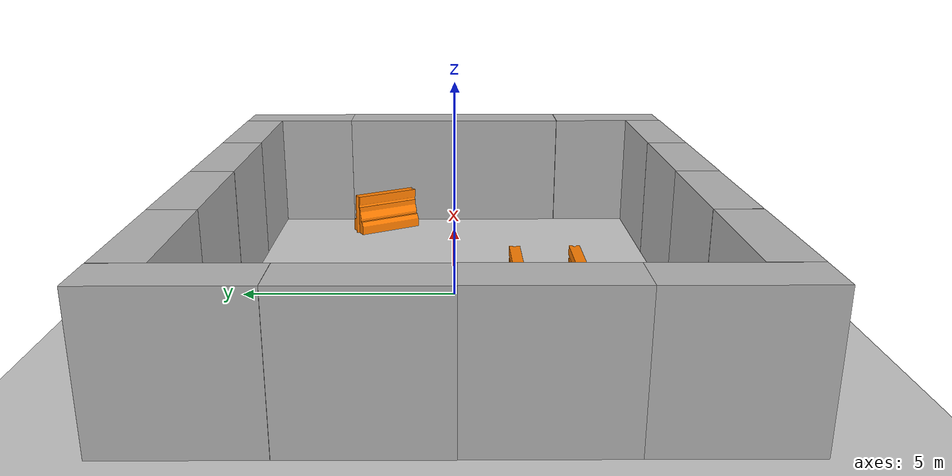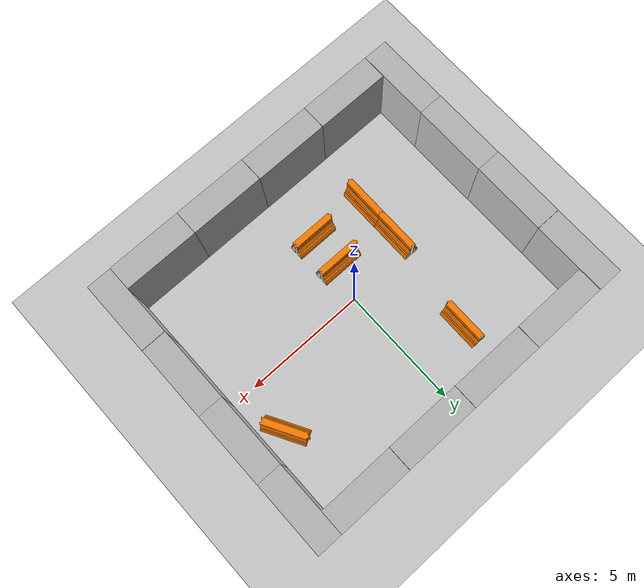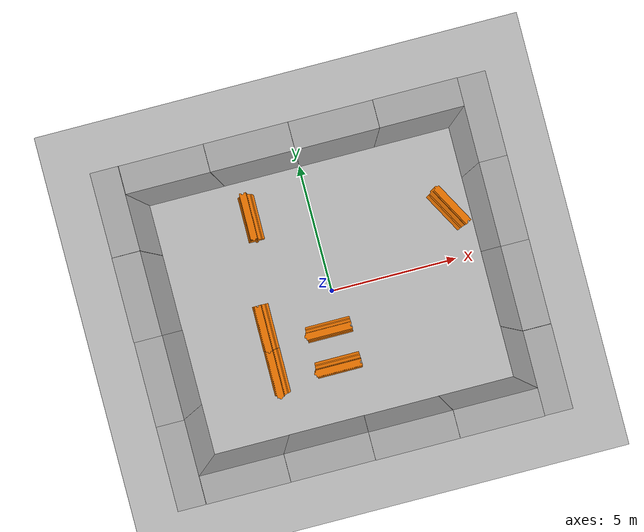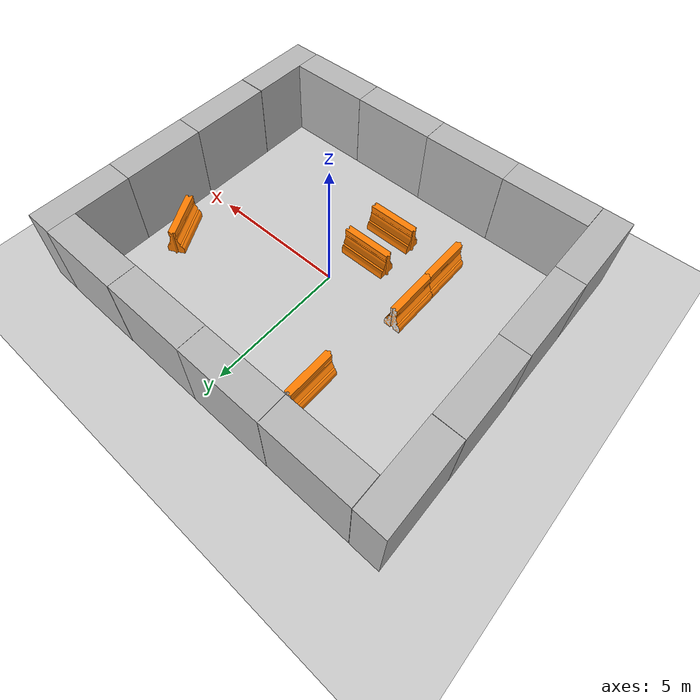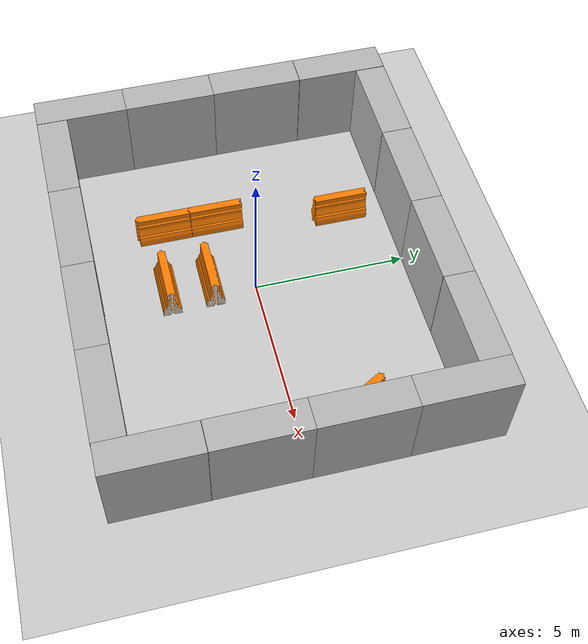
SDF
<sdf version="1.7">
 <world name="default">
  <light name="sun" type="directional">
   <cast_shadows>0</cast_shadows>
   <pose>0 0 10 0 -0 0</pose>
   <diffuse>0.8 0.8 0.8 1</diffuse>
   <specular>0.2 0.2 0.2 1</specular>
   <attenuation>
    <range>1000</range>
    <constant>0.9</constant>
    <linear>0.01</linear>
    <quadratic>0.001</quadratic>
   </attenuation>
   <direction>-0.5 0.1 -0.9</direction>
   <spot><inner_angle>0</inner_angle><outer_angle>0</outer_angle><falloff>0</falloff></spot>
  </light>
  <plugin name="ActorPosesPlugin" filename="libActorPosesPlugin.so"/>
  <model name="ground_plane">
   <static>1</static>
   <link name="link">
    <collision name="collision">
     <geometry><plane><normal>0 0 1</normal><size>100 100</size></plane></geometry>
     <surface><friction><ode><mu>100</mu><mu2>50</mu2></ode></friction></surface>
    </collision>
    <visual name="visual">
     <cast_shadows>0</cast_shadows>
     <geometry><plane><normal>0 0 1</normal><size>100 100</size></plane></geometry>
     <material>
      <script><uri>file://media/materials/scripts/gazebo.material</uri><name>Gazebo/Grey</name></script>
     </material>
    </visual>
   </link>
  </model>
  <gravity>0 0 -9.8</gravity>
  <magnetic_field>6e-06 2.3e-05 -4.2e-05</magnetic_field>
  <atmosphere type="adiabatic"/>
  <physics name="default_physics" default="0" type="ode">
   <max_step_size>0.001</max_step_size>
   <real_time_factor>1</real_time_factor>
   <real_time_update_rate>1000</real_time_update_rate>
  </physics>
  <scene><ambient>0.4 0.4 0.4 1</ambient><background>0.7 0.7 0.7 1</background><shadows>0</shadows></scene>
  <spherical_coordinates>
   <surface_model>EARTH_WGS84</surface_model>
   <latitude_deg>0</latitude_deg>
   <longitude_deg>0</longitude_deg>
   <elevation>0</elevation>
   <heading_deg>0</heading_deg>
  </spherical_coordinates>
  <model name="brick_box_3x1x3">
   <static>1</static>
   <link name="chassis">
    <pose>0 0 1.5 0 -0 0</pose>
    <collision name="collision"><geometry><box><size>3 1 3</size></box></geometry></collision>
    <visual name="visual">
     <geometry><mesh><uri>model://brick_box_3x1x3/meshes/simple_box.dae</uri><scale>3 1 3</scale></mesh></geometry>
     <material>
      <script>
       <uri>model://brick_box_3x1x3/materials/scripts</uri>
       <uri>model://brick_box_3x1x3/materials/textures</uri>
       <name>BrickBox/Diffuse</name>
      </script>
     </material>
    </visual>
   </link>
   <pose>1.49178 -5.50804 0 0 -0 0</pose>
  </model>
  <model name="brick_box_3x1x3_0">
   <static>1</static>
   <link name="chassis">
    <pose>0 0 1.5 0 -0 0</pose>
    <collision name="collision"><geometry><box><size>3 1 3</size></box></geometry></collision>
    <visual name="visual">
     <geometry><mesh><uri>model://brick_box_3x1x3/meshes/simple_box.dae</uri><scale>3 1 3</scale></mesh></geometry>
     <material>
      <script>
       <uri>model://brick_box_3x1x3/materials/scripts</uri>
       <uri>model://brick_box_3x1x3/materials/textures</uri>
       <name>BrickBox/Diffuse</name>
      </script>
     </material>
    </visual>
   </link>
   <pose>-1.51043 -5.50036 0 0 -0 0</pose>
  </model>
  <model name="brick_box_3x1x3_1">
   <static>1</static>
   <link name="chassis">
    <pose>0 0 1.5 0 -0 0</pose>
    <collision name="collision"><geometry><box><size>3 1 3</size></box></geometry></collision>
    <visual name="visual">
     <geometry><mesh><uri>model://brick_box_3x1x3/meshes/simple_box.dae</uri><scale>3 1 3</scale></mesh></geometry>
     <material>
      <script>
       <uri>model://brick_box_3x1x3/materials/scripts</uri>
       <uri>model://brick_box_3x1x3/materials/textures</uri>
       <name>BrickBox/Diffuse</name>
      </script>
     </material>
    </visual>
   </link>
   <pose>1.50118 5.49225 0 0 -0 0</pose>
  </model>
  <model name="brick_box_3x1x3_2">
   <static>1</static>
   <link name="chassis">
    <pose>0 0 1.5 0 -0 0</pose>
    <collision name="collision"><geometry><box><size>3 1 3</size></box></geometry></collision>
    <visual name="visual">
     <geometry><mesh><uri>model://brick_box_3x1x3/meshes/simple_box.dae</uri><scale>3 1 3</scale></mesh></geometry>
     <material>
      <script>
       <uri>model://brick_box_3x1x3/materials/scripts</uri>
       <uri>model://brick_box_3x1x3/materials/textures</uri>
       <name>BrickBox/Diffuse</name>
      </script>
     </material>
    </visual>
   </link>
   <pose>-1.50348 5.4941 0 0 -0 0</pose>
  </model>
  <model name="brick_box_3x1x3_3">
   <static>1</static>
   <link name="chassis">
    <pose>0 0 1.5 0 -0 0</pose>
    <collision name="collision"><geometry><box><size>3 1 3</size></box></geometry></collision>
    <visual name="visual">
     <geometry><mesh><uri>model://brick_box_3x1x3/meshes/simple_box.dae</uri><scale>3 1 3</scale></mesh></geometry>
     <material>
      <script>
       <uri>model://brick_box_3x1x3/materials/scripts</uri>
       <uri>model://brick_box_3x1x3/materials/textures</uri>
       <name>BrickBox/Diffuse</name>
      </script>
     </material>
    </visual>
   </link>
   <pose>-6.5207 4.49478 0 0 -0 1.57257</pose>
  </model>
  <model name="brick_box_3x1x3_4">
   <static>1</static>
   <link name="chassis">
    <pose>0 0 1.5 0 -0 0</pose>
    <collision name="collision"><geometry><box><size>3 1 3</size></box></geometry></collision>
    <visual name="visual">
     <geometry><mesh><uri>model://brick_box_3x1x3/meshes/simple_box.dae</uri><scale>3 1 3</scale></mesh></geometry>
     <material>
      <script>
       <uri>model://brick_box_3x1x3/materials/scripts</uri>
       <uri>model://brick_box_3x1x3/materials/textures</uri>
       <name>BrickBox/Diffuse</name>
      </script>
     </material>
    </visual>
   </link>
   <pose>-4.50856 5.49143 0 0 -0 0</pose>
  </model>
  <model name="brick_box_3x1x3_5">
   <static>1</static>
   <link name="chassis">
    <pose>0 0 1.5 0 -0 0</pose>
    <collision name="collision"><geometry><box><size>3 1 3</size></box></geometry></collision>
    <visual name="visual">
     <geometry><mesh><uri>model://brick_box_3x1x3/meshes/simple_box.dae</uri><scale>3 1 3</scale></mesh></geometry>
     <material>
      <script>
       <uri>model://brick_box_3x1x3/materials/scripts</uri>
       <uri>model://brick_box_3x1x3/materials/textures</uri>
       <name>BrickBox/Diffuse</name>
      </script>
     </material>
    </visual>
   </link>
   <pose>4.5061 5.49704 0 0 -0 0</pose>
  </model>
  <model name="brick_box_3x1x3_6">
   <static>1</static>
   <link name="chassis">
    <pose>0 0 1.5 0 -0 0</pose>
    <collision name="collision"><geometry><box><size>3 1 3</size></box></geometry></collision>
    <visual name="visual">
     <geometry><mesh><uri>model://brick_box_3x1x3/meshes/simple_box.dae</uri><scale>3 1 3</scale></mesh></geometry>
     <material>
      <script>
       <uri>model://brick_box_3x1x3/materials/scripts</uri>
       <uri>model://brick_box_3x1x3/materials/textures</uri>
       <name>BrickBox/Diffuse</name>
      </script>
     </material>
    </visual>
   </link>
   <pose>-4.51318 -5.50466 0 0 -0 0</pose>
  </model>
  <model name="brick_box_3x1x3_7">
   <static>1</static>
   <link name="chassis">
    <pose>0 0 1.5 0 -0 0</pose>
    <collision name="collision"><geometry><box><size>3 1 3</size></box></geometry></collision>
    <visual name="visual">
     <geometry><mesh><uri>model://brick_box_3x1x3/meshes/simple_box.dae</uri><scale>3 1 3</scale></mesh></geometry>
     <material>
      <script>
       <uri>model://brick_box_3x1x3/materials/scripts</uri>
       <uri>model://brick_box_3x1x3/materials/textures</uri>
       <name>BrickBox/Diffuse</name>
      </script>
     </material>
    </visual>
   </link>
   <pose>4.49333 -5.50629 0 0 -0 0</pose>
  </model>
  <model name="brick_box_3x1x3_3_clone">
   <static>1</static>
   <link name="chassis">
    <pose>0 0 1.5 0 -0 0</pose>
    <collision name="collision"><geometry><box><size>3 1 3</size></box></geometry></collision>
    <visual name="visual">
     <geometry><mesh><uri>model://brick_box_3x1x3/meshes/simple_box.dae</uri><scale>3 1 3</scale></mesh></geometry>
     <material>
      <script>
       <uri>model://brick_box_3x1x3/materials/scripts</uri>
       <uri>model://brick_box_3x1x3/materials/textures</uri>
       <name>BrickBox/Diffuse</name>
      </script>
     </material>
    </visual>
   </link>
   <pose>-6.52126 1.48858 3e-06 -0.001926 1e-05 1.56943</pose>
  </model>
  <model name="brick_box_3x1x3_3_clone_clone">
   <static>1</static>
   <link name="chassis">
    <pose>0 0 1.5 0 -0 0</pose>
    <collision name="collision"><geometry><box><size>3 1 3</size></box></geometry></collision>
    <visual name="visual">
     <geometry><mesh><uri>model://brick_box_3x1x3/meshes/simple_box.dae</uri><scale>3 1 3</scale></mesh></geometry>
     <material>
      <script>
       <uri>model://brick_box_3x1x3/materials/scripts</uri>
       <uri>model://brick_box_3x1x3/materials/textures</uri>
       <name>BrickBox/Diffuse</name>
      </script>
     </material>
    </visual>
   </link>
   <pose>-6.51467 -1.50944 3e-06 -0.001926 1e-05 1.56943</pose>
  </model>
  <model name="brick_box_3x1x3_3_clone_clone_clone">
   <static>1</static>
   <link name="chassis">
    <pose>0 0 1.5 0 -0 0</pose>
    <collision name="collision"><geometry><box><size>3 1 3</size></box></geometry></collision>
    <visual name="visual">
     <geometry><mesh><uri>model://brick_box_3x1x3/meshes/simple_box.dae</uri><scale>3 1 3</scale></mesh></geometry>
     <material>
      <script>
       <uri>model://brick_box_3x1x3/materials/scripts</uri>
       <uri>model://brick_box_3x1x3/materials/textures</uri>
       <name>BrickBox/Diffuse</name>
      </script>
     </material>
    </visual>
   </link>
   <pose>-6.5148 -4.5007 3e-06 -0.001926 1e-05 1.56943</pose>
  </model>
  <model name="brick_box_3x1x3_3_clone_clone_clone_0">
   <static>1</static>
   <link name="chassis">
    <pose>0 0 1.5 0 -0 0</pose>
    <collision name="collision"><geometry><box><size>3 1 3</size></box></geometry></collision>
    <visual name="visual">
     <geometry><mesh><uri>model://brick_box_3x1x3/meshes/simple_box.dae</uri><scale>3 1 3</scale></mesh></geometry>
     <material>
      <script>
       <uri>model://brick_box_3x1x3/materials/scripts</uri>
       <uri>model://brick_box_3x1x3/materials/textures</uri>
       <name>BrickBox/Diffuse</name>
      </script>
     </material>
    </visual>
   </link>
   <pose>6.49989 -4.49229 3e-06 -0.001926 1e-05 1.56943</pose>
  </model>
  <model name="brick_box_3x1x3_3_clone_clone_clone_1">
   <static>1</static>
   <link name="chassis">
    <pose>0 0 1.5 0 -0 0</pose>
    <collision name="collision"><geometry><box><size>3 1 3</size></box></geometry></collision>
    <visual name="visual">
     <geometry><mesh><uri>model://brick_box_3x1x3/meshes/simple_box.dae</uri><scale>3 1 3</scale></mesh></geometry>
     <material>
      <script>
       <uri>model://brick_box_3x1x3/materials/scripts</uri>
       <uri>model://brick_box_3x1x3/materials/textures</uri>
       <name>BrickBox/Diffuse</name>
      </script>
     </material>
    </visual>
   </link>
   <pose>6.49863 -1.48204 3e-06 -0.001926 1e-05 1.56943</pose>
  </model>
  <model name="brick_box_3x1x3_3_clone_clone_clone_2">
   <static>1</static>
   <link name="chassis">
    <pose>0 0 1.5 0 -0 0</pose>
    <collision name="collision"><geometry><box><size>3 1 3</size></box></geometry></collision>
    <visual name="visual">
     <geometry><mesh><uri>model://brick_box_3x1x3/meshes/simple_box.dae</uri><scale>3 1 3</scale></mesh></geometry>
     <material>
      <script>
       <uri>model://brick_box_3x1x3/materials/scripts</uri>
       <uri>model://brick_box_3x1x3/materials/textures</uri>
       <name>BrickBox/Diffuse</name>
      </script>
     </material>
    </visual>
   </link>
   <pose>6.50304 1.51015 3e-06 -0.001926 1e-05 1.56943</pose>
  </model>
  <model name="brick_box_3x1x3_3_clone_clone_clone_2_clone">
   <static>1</static>
   <link name="chassis">
    <pose>0 0 1.5 0 -0 0</pose>
    <collision name="collision"><geometry><box><size>3 1 3</size></box></geometry></collision>
    <visual name="visual">
     <geometry><mesh><uri>model://brick_box_3x1x3/meshes/simple_box.dae</uri><scale>3 1 3</scale></mesh></geometry>
     <material>
      <script>
       <uri>model://brick_box_3x1x3/materials/scripts</uri>
       <uri>model://brick_box_3x1x3/materials/textures</uri>
       <name>BrickBox/Diffuse</name>
      </script>
     </material>
    </visual>
   </link>
   <pose>6.50502 4.48703 3e-06 -0.001926 1e-05 1.56943</pose>
  </model>
  <model name="drc_practice_organge_jersey_barrier">
   <static>1</static>
   <link name="link">
    <visual name="visual">
     <geometry>
      <mesh><uri>model://drc_practice_orange_jersey_barrier/meshes/jersey_barrier.dae</uri></mesh>
     </geometry>
    </visual>
    <collision name="collision">
     <geometry>
      <mesh><uri>model://drc_practice_orange_jersey_barrier/meshes/jersey_barrier.dae</uri></mesh>
     </geometry>
    </collision>
   </link>
   <pose>-2.8294 -2.48949 0 0 -0 0</pose>
  </model>
  <model name="drc_practice_organge_jersey_barrier_clone">
   <static>1</static>
   <link name="link">
    <visual name="visual">
     <geometry>
      <mesh><uri>model://drc_practice_orange_jersey_barrier/meshes/jersey_barrier.dae</uri></mesh>
     </geometry>
    </visual>
    <collision name="collision">
     <geometry>
      <mesh><uri>model://drc_practice_orange_jersey_barrier/meshes/jersey_barrier.dae</uri></mesh>
     </geometry>
    </collision>
   </link>
   <pose>-2.82657 -0.718311 0 0 -0 0</pose>
  </model>
  <model name="drc_practice_organge_jersey_barrier_0">
   <static>1</static>
   <link name="link">
    <visual name="visual">
     <geometry>
      <mesh><uri>model://drc_practice_orange_jersey_barrier/meshes/jersey_barrier.dae</uri></mesh>
     </geometry>
    </visual>
    <collision name="collision">
     <geometry>
      <mesh><uri>model://drc_practice_orange_jersey_barrier/meshes/jersey_barrier.dae</uri></mesh>
     </geometry>
    </collision>
   </link>
   <pose>-0.477145 -1.42022 0 0 0 -1.56553</pose>
  </model>
  <model name="drc_practice_organge_jersey_barrier_0_clone">
   <static>1</static>
   <link name="link">
    <visual name="visual">
     <geometry>
      <mesh><uri>model://drc_practice_orange_jersey_barrier/meshes/jersey_barrier.dae</uri></mesh>
     </geometry>
    </visual>
    <collision name="collision">
     <geometry>
      <mesh><uri>model://drc_practice_orange_jersey_barrier/meshes/jersey_barrier.dae</uri></mesh>
     </geometry>
    </collision>
   </link>
   <pose>-0.463905 -2.84159 0 0 0 -1.56553</pose>
  </model>
  <model name="drc_practice_organge_jersey_barrier_0_clone_0">
   <static>1</static>
   <link name="link">
    <visual name="visual">
     <geometry>
      <mesh><uri>model://drc_practice_orange_jersey_barrier/meshes/jersey_barrier.dae</uri></mesh>
     </geometry>
    </visual>
    <collision name="collision">
     <geometry>
      <mesh><uri>model://drc_practice_orange_jersey_barrier/meshes/jersey_barrier.dae</uri></mesh>
     </geometry>
    </collision>
   </link>
   <pose>5.17021 1.96694 0 0 0 -2.62947</pose>
  </model>
  <model name="drc_practice_organge_jersey_barrier_clone_clone">
   <static>1</static>
   <link name="link">
    <visual name="visual">
     <geometry>
      <mesh><uri>model://drc_practice_orange_jersey_barrier/meshes/jersey_barrier.dae</uri></mesh>
     </geometry>
    </visual>
    <collision name="collision">
     <geometry>
      <mesh><uri>model://drc_practice_orange_jersey_barrier/meshes/jersey_barrier.dae</uri></mesh>
     </geometry>
    </collision>
   </link>
   <pose>-2.31053 3.48656 0 0 -0 0</pose>
  </model>
 </world>
</sdf>
